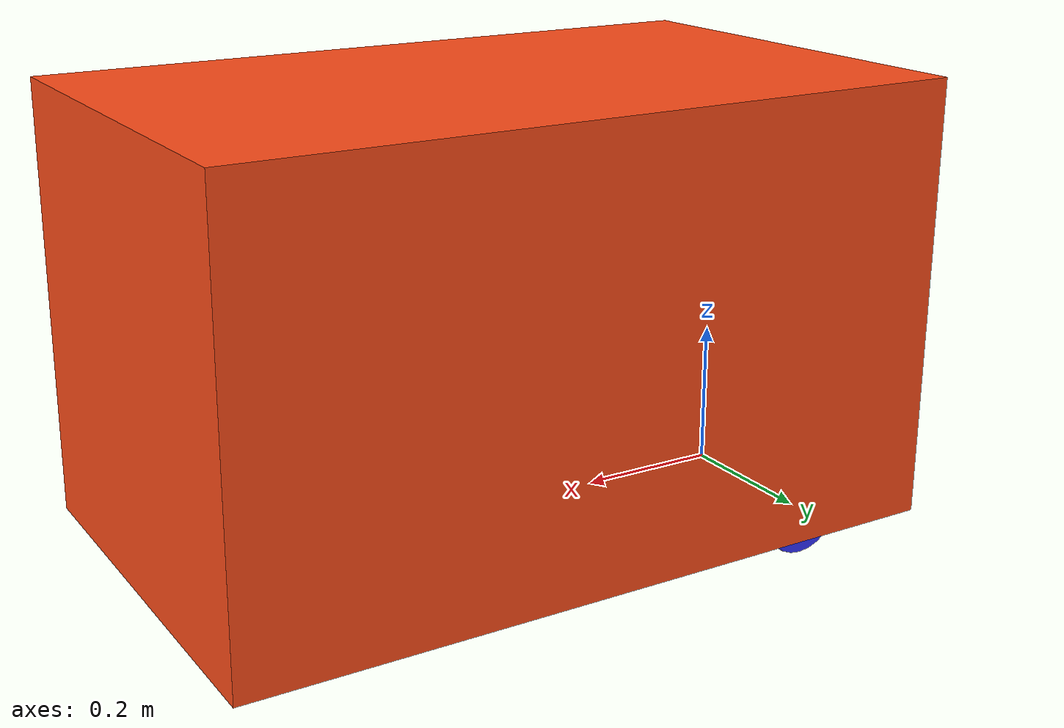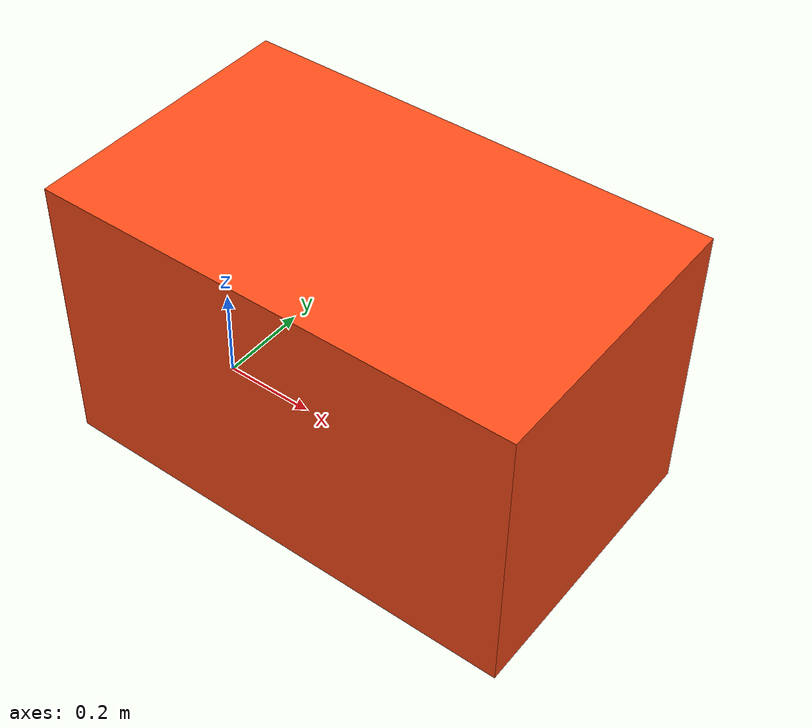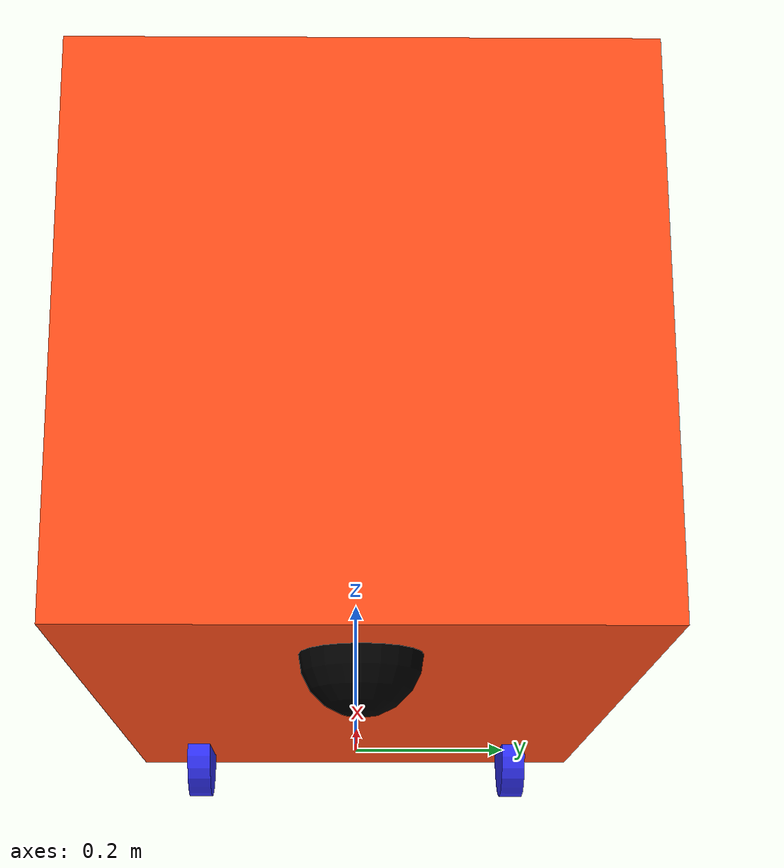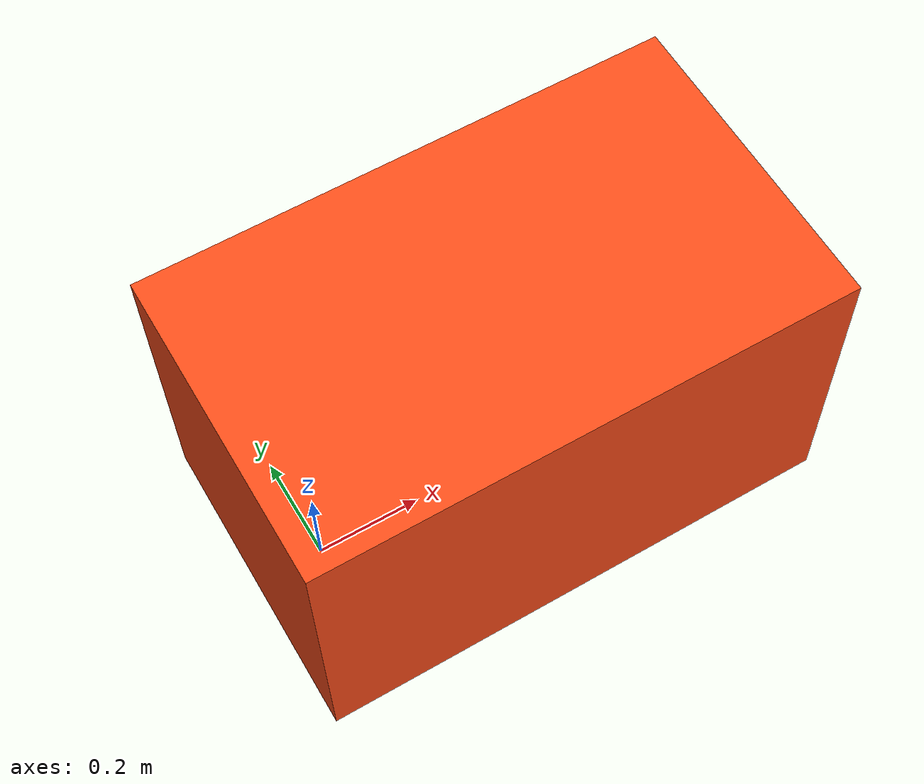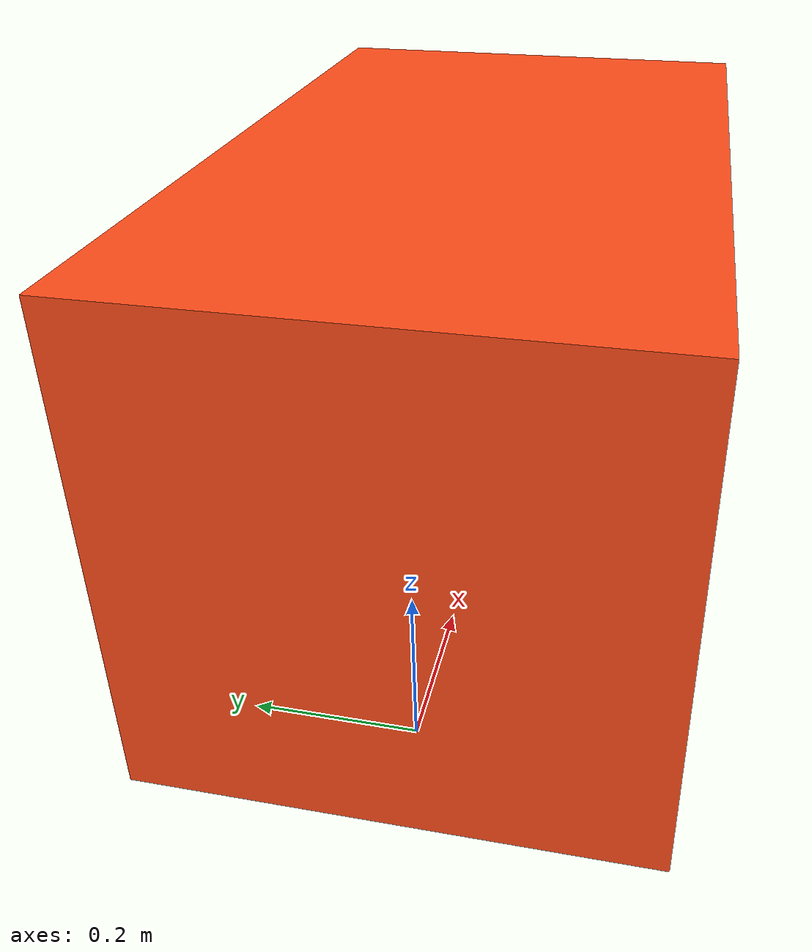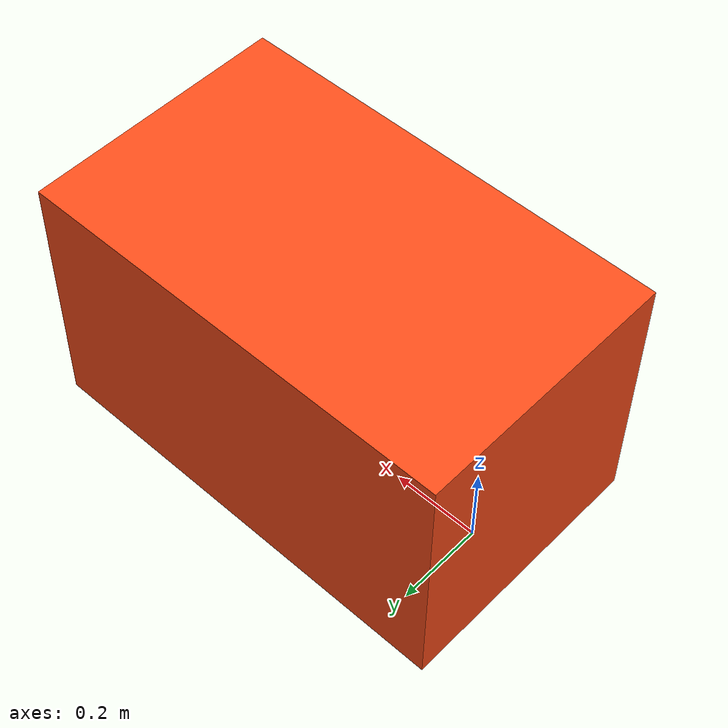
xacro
<?xml version="1.0"?>
<robot xmlns:xacro="http://www.ros.org/wiki/xacro" >

<xacro:include filename="inertial_macros.xacro"/>

<material name="white">
    <color rgba="1 1 1 1" />
</material>
<material name="orange">
    <color rgba="1 0.3 0.1 1" />
</material>
<material name="blue">
    <color rgba="0.2 0.2 1 1" />
</material>
<material name="black">
    <color rgba="0 0 0 1" />
</material>
<material name="red">
    <color rgba="1 0 0 1" />
</material>

<!-- BASE LINK-->
<link name="base_link">
</link>

<!-- BASE FOOTPRINT LINK -->
<joint name="base_footprint_joint" type="fixed">
    <parent link="base_footprint"/>
    <child link="base_link"/>
    <origin xyz="0 0 0" rpy="0 0 0"/>
</joint>

<link name="base_footprint">
</link>

<!-- CHASSIS LINK-->
<joint name="chassis_joint" type="fixed">
    <parent link="base_link"/>
    <child link="chassis"/>
    <origin xyz="-0.13 0 0"/>
</joint>

<link name="chassis">
    <visual>
        <origin xyz="0.5 0 0.3"/>
        <geometry>
            <box size="1 0.6 0.6"/>
        </geometry>
        <material name="orange"/>
    </visual>
    <collision>
        <origin xyz="0.5 0 0.3"/>
        <geometry>
        <box size="1 0.6 0.6"/>
        </geometry>
    </collision>
    <xacro:inertial_box mass="60" x="1" y="0.6" z="0.6">
    <origin xyz="0.5 0 0.3" rpy="0 0 0"/>
    </xacro:inertial_box>
</link>

<gazebo reference="chassis">
<material>Gazebo/Orange</material>
</gazebo>

<!-- LEFT WHEEL LINK -->
<joint name="left_wheel_joint" type="continuous">
<parent link="base_link"/>
<child link = "left_wheel"/>
<origin xyz="0 0.21 0" rpy="-${pi/2} 0 0"/>
<axis xyz="0 0 1"/>
</joint>

<link name="left_wheel">
<visual>
<geometry>
<cylinder radius="0.0625" length="0.03"/>
</geometry>
<material name="blue"/>
</visual>
<collision>
<geometry>
<cylinder radius="0.0625" length="0.03"/>
</geometry>
</collision>
<xacro:inertial_cylinder mass="0.5" length="0.03" radius="0.0625">
<origin xyz="0 0 0" rpy="0 0 0"/>
</xacro:inertial_cylinder>
</link>

<gazebo reference="left_wheel">
<material>Gazebo/Blue</material>
</gazebo>

<!-- RIGHT WHEEL LINK -->
<joint name="right_wheel_joint" type="continuous">
<parent link="base_link"/>
<child link = "right_wheel"/>
<origin xyz="0 -0.21 0" rpy="${pi/2} 0 0"/>
<axis xyz="0 0 -1"/>
</joint>

<link name="right_wheel">
<visual>
<geometry>
<cylinder radius="0.0625" length="0.03"/>
</geometry>
<material name="blue"/>
</visual>
<collision>
<geometry>
<cylinder radius="0.0625" length="0.03"/>
</geometry>
</collision>
<xacro:inertial_cylinder mass="0.5" length="0.03" radius="0.0625">
<origin xyz="0 0 0" rpy="0 0 0"/>
</xacro:inertial_cylinder>
</link>

<gazebo reference="right_wheel">
<material>Gazebo/Blue</material>
</gazebo>

<!-- CASTER WHEEL LINK -->
<joint name="caster_wheel_joint" type="fixed">
<parent link="chassis"/>
<child link="caster_wheel"/>
<origin xyz="0.85 0 0"/>
</joint>

<link name="caster_wheel">
<visual>
<geometry>
<sphere radius="0.0625"/>
</geometry>
<material name="black"/>
</visual>
<collision>
<geometry>
<sphere radius="0.0625"/>
</geometry>
</collision>
<xacro:inertial_sphere mass="0.1" radius="0.0625">
<origin xyz="0 0 0" rpy="0 0 0"/>
</xacro:inertial_sphere>
</link>

<gazebo reference="caster_wheel">
<material>Gazebo/Black</material>
<mu1 value="0.001"/>
<mu2 value="0.001"/>
</gazebo>

</robot>
